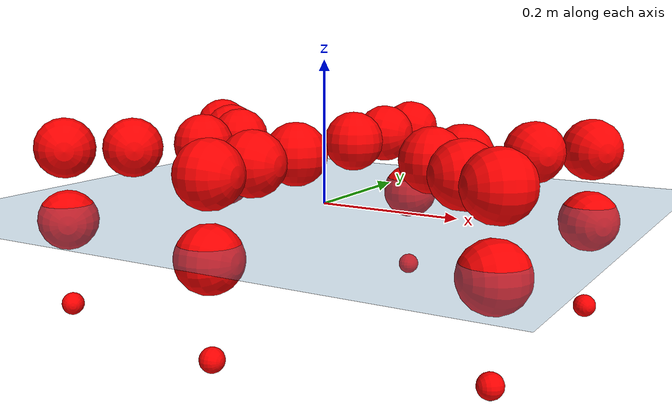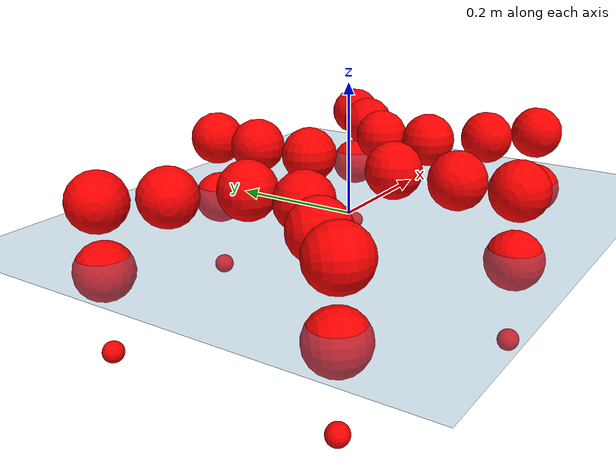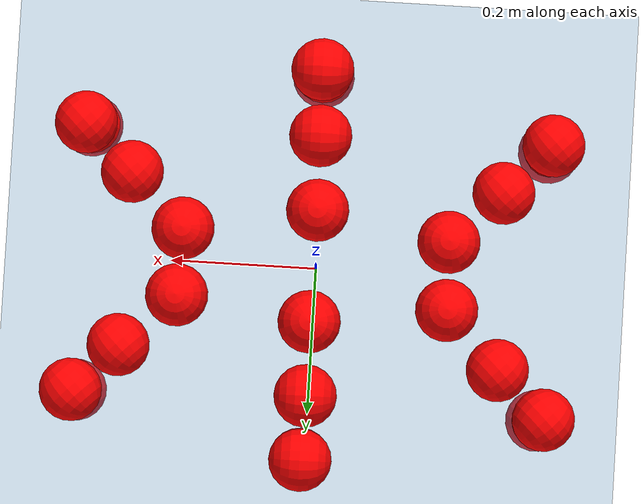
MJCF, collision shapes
<mujoco model="Golem">
  <compiler angle="radian" assetdir="assets" balanceinertia="true" inertiafromgeom="false"/>

  <option timestep="0.005" density="1.2" viscosity="2e-05"/>

  <size nkey="1"/>

  <visual>
    <quality shadowsize="8192"/>
    <map shadowclip="0.5"/>
  </visual>

  <default>
    <default class="/">
      <joint armature="0.01" damping="0.01" frictionloss="0.01"/>
      <geom contype="0" conaffinity="0" group="1" solref="-1000 -80"/>
      <site size="0.01 0.005 0.005" group="5"/>
      <general forcelimited="true" biastype="affine" gainprm="25" biasprm="0 -25 -0.5"/>
      <default class="visual">
        <geom type="mesh" group="2"/>
      </default>
      <default class="collision">
        <geom group="3"/>
      </default>
      <default class="foot">
        <geom size="0.01 0 0" condim="6" group="4" priority="1" solimp="0.015 1 0.01"/>
      </default>
      <default class="reward_collision_sphere">
        <geom group="5" rgba="1 0 0 1"/>
      </default>
    </default>
  </default>

  <asset>
    <texture type="skybox" colorspace="auto" name="//unnamed_texture_0" builtin="gradient" rgb1="0.95 0.95 0.95" rgb2="0.95 0.95 0.95" width="100" height="600"/>
    <texture type="2d" colorspace="auto" name="texplane" builtin="checker" rgb1="0.345 0.575 0.748" rgb2="0.345 0.575 0.748" markrgb="1 1 1" width="512" height="512"/>
    <material name="MatPlane" class="/" texture="texplane" texuniform="true" texrepeat="2 2" specular="0.9"/>
    <mesh name="body" class="/" file="body.stl" scale="0.001 0.001 0.001"/>
    <mesh name="coxa" class="/" file="coxa.stl" scale="0.001 0.001 0.001"/>
    <mesh name="femur" class="/" file="femur.stl" scale="0.001 0.001 0.001"/>
    <mesh name="tibia" class="/" file="tibia.stl" scale="0.001 0.001 0.001"/>
    <mesh name="tarsus" class="/" file="tarsus.stl" scale="0.001 0.001 0.001"/>
  </asset>

  <worldbody>
    <geom name="floor" class="/" size="100 100 0.125" type="plane" group="0" material="MatPlane"/>
    <light name="toplight_shadow" class="/" pos="0 0 5" dir="0.0990148 0.0990148 -0.990148" type="directional" ambient="0.04 0.04 0.04" diffuse="0.55 0.55 0.55" specular="0.12 0.12 0.12"/>
    <light name="toplight_fill" class="/" pos="0 0 5" dir="0.0990148 0.0990148 -0.990148" type="directional" castshadow="false" ambient="0.04 0.04 0.04" diffuse="0.3 0.3 0.3" specular="0.08 0.08 0.08"/>
    <body name="trunk" pos="0.00267227 0.0010951 0.00070998" quat="1 1.87938e-05 3.24129e-05 -1.56318e-06">
      <inertial pos="-0.000596222 -0.00106118 -0.00152456" quat="0.999997 0.00241031 0.000463772 -0.000865386" mass="4.39011" diaginertia="0.0191346 0.00389883 0.0261709"/>
      <joint name="//unnamed_joint_0" type="free"/>
      <geom name="//unnamed_geom_1" class="/" pos="0 0 0.0776169" quat="1 0 0 0" type="mesh" rgba="0.9 0.9 0.9 1" mesh="body"/>
      <site name="imu" class="/" pos="0.162229 0.0126535 0.116632" size="0.0106434"/>
      <camera name="track" class="/" pos="0 -1.66476 0" quat="0.707107 0.707107 0 0" mode="trackcom"/>
      <camera name="ego_camera" class="/" pos="0.149223 0 0.121276" quat="-0.5 -0.5 0.5 0.5"/>
      <body name="coxa_RR" pos="-0.204524 -0.0688457 0.076882" quat="0.382601 -5.11056e-06 0.000228834 -0.923914">
        <inertial pos="0.000101369 -0.00262988 0.000599914" quat="0.999959 -0.00860702 0.00232159 -0.00155174" mass="0.230229" diaginertia="0.0192648 0.00385761 0.0252485"/>
        <joint name="coxa_joint_RR" class="/" pos="0 0 0" axis="0.00331713 -0.00205866 -0.999992" range="-3.1374 3.13269" armature="0.00947705" damping="0" frictionloss="0.0106226"/>
        <geom name="//unnamed_geom_2" class="/" type="mesh" rgba="0.2 0.2 0.2 1" mesh="coxa"/>
        <geom name="//unnamed_geom_3" class="reward_collision_sphere" size="0.0425735" pos="-0.0344362 0 0"/>
        <body name="femur_RR" pos="0.0655365 0.000130082 -0.00246828" quat="0.500076 -0.499917 0.500095 0.499911">
          <inertial pos="-0.000318281 0.000329381 -0.00036558" quat="0.99999 0.00410126 0.000511868 0.0014905" mass="0.240748" diaginertia="0.0198435 0.00393723 0.0270127"/>
          <joint name="femur_joint_RR" class="/" pos="0 0 0" axis="-0.000370403 0.00585584 -0.999983" range="-3.18971 3.10393" armature="0.011196" damping="0.00647883" frictionloss="0.0119056"/>
          <geom name="//unnamed_geom_4" class="/" type="mesh" rgba="0.9 0.9 0.9 1" mesh="femur"/>
          <geom name="//unnamed_geom_5" class="reward_collision_sphere" size="0.0425735"/>
          <body name="tibia_RR" pos="-0.00302273 -0.0930077 0.00306063" quat="-0.00103578 0.999999 0.000637529 0.000288714">
            <inertial pos="-0.00249373 0.00110836 -0.000617741" quat="0.999997 -0.00235202 0.000198532 -0.000405826" mass="0.244085" diaginertia="0.0196595 0.00398787 0.025431"/>
            <joint name="tibia_joint_RR" class="/" pos="0 0 0" axis="-0.00151407 0.0107626 0.999941" range="-3.13877 3.16359" armature="0.0110625" damping="0.000929864" frictionloss="0.0106578"/>
            <geom name="//unnamed_geom_6" class="/" type="mesh" rgba="0.2 0.2 0.2 1" mesh="tibia"/>
            <geom name="//unnamed_geom_7" class="reward_collision_sphere" size="0.0425735"/>
            <body name="tarsus_RR" pos="0.102326 0.000422469 0.00196717" quat="1 1.43815e-05 -0.000102428 0.000123745">
              <inertial pos="0.072264 0.000395658 0.000205108" quat="0.503897 0.497475 0.500908 0.497693" mass="0.240403" diaginertia="0.019726 0.00401437 0.0262719"/>
              <joint name="tarsus_joint_RR" class="/" pos="0 0 0" axis="-0.000396229 -0.000150839 1" range="-3.18825 3.16776" armature="0.0111725" damping="0.0426238" frictionloss="0.0104808"/>
              <geom name="//unnamed_geom_8" class="/" type="mesh" rgba="0.9 0.9 0.9 1" mesh="tarsus"/>
              <geom name="foot_1" class="foot" size="0.0106081" pos="0.128562 0 0" quat="0 -0.707107 0 0.707107"/>
              <geom name="//unnamed_geom_10" class="reward_collision_sphere" size="0.0425735"/>
              <geom name="//unnamed_geom_11" class="reward_collision_sphere" size="0.0159651" pos="0.123396 0 0"/>
              <site name="foot_1" class="foot" pos="0.128562 0 0" quat="0 -0.707107 0 0.707107" size="0.0106434"/>
            </body>
          </body>
        </body>
      </body>
      <body name="coxa_RM" pos="-0.000730699 -0.111514 0.0788566" quat="0.706623 8.85983e-05 0.000132556 -0.70759">
        <inertial pos="0.00205614 -0.000134009 0.000387579" quat="1 0.000132263 -0.000534775 3.41437e-05" mass="0.240763" diaginertia="0.0197315 0.00385465 0.0267068"/>
        <joint name="coxa_joint_RM" class="/" pos="0 0 0" axis="0.00160377 -0.00155839 -0.999997" stiffness="0.000954068" range="-3.12983 3.12266" armature="0.0107993" damping="0.00155999" frictionloss="0.00927541"/>
        <geom name="//unnamed_geom_12" class="/" type="mesh" rgba="0.2 0.2 0.2 1" mesh="coxa"/>
        <geom name="//unnamed_geom_13" class="reward_collision_sphere" size="0.0425735" pos="-0.0344362 0 0"/>
        <body name="femur_RM" pos="0.0662931 0.00195736 0.000889319" quat="0.499685 -0.500293 0.499129 0.500892">
          <inertial pos="-0.00105995 -1.10218e-05 -0.000165487" quat="0.999995 0.00229691 0.000229366 0.00206332" mass="0.247448" diaginertia="0.0205866 0.00401066 0.0270394"/>
          <joint name="femur_joint_RM" class="/" pos="0 0 0" axis="-0.00391746 0.00306524 -0.999988" stiffness="0.000113426" range="-3.13752 3.13912" armature="0.0104972" damping="0.0194775" frictionloss="0.0106702"/>
          <geom name="//unnamed_geom_14" class="/" type="mesh" rgba="0.9 0.9 0.9 1" mesh="femur"/>
          <geom name="//unnamed_geom_15" class="reward_collision_sphere" size="0.0425735"/>
          <body name="tibia_RM" pos="6.79886e-05 -0.0898719 0.00236019" quat="-0.000120991 1 0.000132335 0.000157725">
            <inertial pos="0.00171984 -0.00284878 0.000599146" quat="0.999918 0.00639178 0.00145123 0.0110095" mass="0.235112" diaginertia="0.0200162 0.00415596 0.0266598"/>
            <joint name="tibia_joint_RM" class="/" pos="0 0 0" axis="-0.000971888 -0.00209412 0.999997" range="-3.19119 3.19059" armature="0.0105356" damping="0.0164638" frictionloss="0.0100759"/>
            <geom name="//unnamed_geom_16" class="/" type="mesh" rgba="0.2 0.2 0.2 1" mesh="tibia"/>
            <geom name="//unnamed_geom_17" class="reward_collision_sphere" size="0.0425735"/>
            <body name="tarsus_RM" pos="0.100225 0.000427421 0.00193437" quat="1 7.05682e-05 -0.000141146 2.69013e-05">
              <inertial pos="0.0678292 -0.00107205 0.0022986" quat="0.509725 0.500196 0.490854 0.499046" mass="0.248969" diaginertia="0.0192808 0.00393542 0.0254958"/>
              <joint name="tarsus_joint_RM" class="/" pos="0 0 0" axis="0.00260599 -0.000602632 0.999996" range="-3.11173 3.15788" armature="0.010624" damping="0.00416337" frictionloss="0.0107202"/>
              <geom name="//unnamed_geom_18" class="/" type="mesh" rgba="0.9 0.9 0.9 1" mesh="tarsus"/>
              <geom name="foot_2" class="foot" size="0.0102845" pos="0.128562 0 0" quat="0 -0.707107 0 0.707107"/>
              <geom name="//unnamed_geom_20" class="reward_collision_sphere" size="0.0425735"/>
              <geom name="//unnamed_geom_21" class="reward_collision_sphere" size="0.0159651" pos="0.123396 0 0"/>
              <site name="foot_2" class="foot" pos="0.128562 0 0" quat="0 -0.707107 0 0.707107" size="0.0106434"/>
            </body>
          </body>
        </body>
      </body>
      <body name="coxa_RF" pos="0.203566 -0.0665897 0.0804511" quat="0.923925 0.000118524 5.65618e-05 -0.382574">
        <inertial pos="0.000974336 0.000847099 0.000826755" quat="1 0.000365815 -0.000631059 7.37857e-06" mass="0.23943" diaginertia="0.0198704 0.00393566 0.0260757"/>
        <joint name="coxa_joint_RF" class="/" pos="0 0 0" axis="0.00183014 -0.00147392 -0.999997" stiffness="0.00109786" range="-3.12725 3.11728" armature="0.0119318" damping="0.00303941" frictionloss="0.0108397"/>
        <geom name="//unnamed_geom_22" class="/" type="mesh" rgba="0.2 0.2 0.2 1" mesh="coxa"/>
        <geom name="//unnamed_geom_23" class="reward_collision_sphere" size="0.0425735" pos="-0.0344362 0 0"/>
        <body name="femur_RF" pos="0.068533 0.000373433 -0.00182389" quat="0.500204 -0.499875 0.499976 0.499945">
          <inertial pos="-7.31681e-05 -0.00161169 0.000710253" quat="1 -3.3141e-05 0.000299105 0.000355076" mass="0.240899" diaginertia="0.0199269 0.00392245 0.0270138"/>
          <joint name="femur_joint_RF" class="/" pos="0 0 0" axis="0.000623676 -0.000752464 -1" stiffness="0.00362743" range="-3.19324 3.12108" armature="0.00922002" damping="0.00925142" frictionloss="0.0117845"/>
          <geom name="//unnamed_geom_24" class="/" type="mesh" rgba="0.9 0.9 0.9 1" mesh="femur"/>
          <geom name="//unnamed_geom_25" class="reward_collision_sphere" size="0.0425735"/>
          <body name="tibia_RF" pos="-0.00274745 -0.0912487 0.00207066" quat="-0.000305123 1 0.000133929 -0.000182891">
            <inertial pos="-0.00247999 -0.000365229 0.00106408" quat="1 -0.000481614 -0.000522472 0.000232325" mass="0.245805" diaginertia="0.0193963 0.0040084 0.0260319"/>
            <joint name="tibia_joint_RF" class="/" pos="0 0 0" axis="0.00527485 -0.0107994 0.999928" range="-3.11838 3.08477" armature="0.010899" damping="0.0130366" frictionloss="0.010621"/>
            <geom name="//unnamed_geom_26" class="/" type="mesh" rgba="0.2 0.2 0.2 1" mesh="tibia"/>
            <geom name="//unnamed_geom_27" class="reward_collision_sphere" size="0.0425735"/>
            <body name="tarsus_RF" pos="0.0986371 0.00227672 0.00302702" quat="0.999999 0.00115716 1.83323e-05 0.000732431">
              <inertial pos="0.068702 -0.000952061 0.000107045" quat="0.499928 0.50229 0.498823 0.498951" mass="0.241652" diaginertia="0.0197519 0.00405718 0.0266387"/>
              <joint name="tarsus_joint_RF" class="/" pos="0 0 0" axis="0.00247921 0.00915834 0.999955" range="-3.13302 3.15936" armature="0.0112504" damping="0.00763053" frictionloss="0.0103795"/>
              <geom name="//unnamed_geom_28" class="/" type="mesh" rgba="0.9 0.9 0.9 1" mesh="tarsus"/>
              <geom name="foot_3" class="foot" size="0.0113576" pos="0.128562 0 0" quat="0 -0.707107 0 0.707107"/>
              <geom name="//unnamed_geom_30" class="reward_collision_sphere" size="0.0425735"/>
              <geom name="//unnamed_geom_31" class="reward_collision_sphere" size="0.0159651" pos="0.123396 0 0"/>
              <site name="foot_3" class="foot" pos="0.128562 0 0" quat="0 -0.707107 0 0.707107" size="0.0106434"/>
            </body>
          </body>
        </body>
      </body>
      <body name="coxa_LR" pos="-0.206721 0.0720308 0.0769962" quat="0.382683 5.50528e-08 4.34777e-08 0.92388">
        <inertial pos="-0.00248079 0.000108698 -0.0019005" quat="0.99991 -0.00646537 0.00244761 0.0114545" mass="0.241719" diaginertia="0.0205272 0.00422261 0.0265835"/>
        <joint name="coxa_joint_LR" class="/" pos="0 0 0" axis="-0.0014118 0.0164414 -0.999864" stiffness="0.00322518" range="-3.1191 3.12672" armature="0.0100848" damping="0.0154408" frictionloss="0.00944558"/>
        <geom name="//unnamed_geom_32" class="/" type="mesh" rgba="0.2 0.2 0.2 1" mesh="coxa"/>
        <geom name="//unnamed_geom_33" class="reward_collision_sphere" size="0.0425735" pos="-0.0344362 0 0"/>
        <body name="femur_LR" pos="0.07137 -0.00255361 -0.00285119" quat="0.500002 -0.499998 0.499999 0.5">
          <inertial pos="0.000253353 -0.000106215 -0.000348785" quat="0.999991 0.00173498 0.0034183 0.00154004" mass="0.241445" diaginertia="0.019981 0.0041295 0.0262745"/>
          <joint name="femur_joint_LR" class="/" pos="0 0 0" axis="0.00297525 -0.00637889 0.999975" range="-3.15832 3.13172" armature="0.0100681" damping="0.0062858" frictionloss="0.00923025"/>
          <geom name="//unnamed_geom_34" class="/" type="mesh" rgba="0.9 0.9 0.9 1" mesh="femur"/>
          <geom name="//unnamed_geom_35" class="reward_collision_sphere" size="0.0425735"/>
          <body name="tibia_LR" pos="-0.000979599 -0.0909963 0.00163836" quat="-0.000383934 0.999999 -0.00103768 -0.000795368">
            <inertial pos="0.000244703 0.000729794 3.42536e-05" quat="0.999992 -0.00319653 0.000320043 -0.00225904" mass="0.240117" diaginertia="0.0201642 0.00406572 0.0264766"/>
            <joint name="tibia_joint_LR" class="/" pos="0 0 0" axis="-0.00128451 0.000686051 -0.999999" range="-3.15136 3.09473" armature="0.010541" damping="0.0101299" frictionloss="0.0107919"/>
            <geom name="//unnamed_geom_36" class="/" type="mesh" rgba="0.2 0.2 0.2 1" mesh="tibia"/>
            <geom name="//unnamed_geom_37" class="reward_collision_sphere" size="0.0425735"/>
            <body name="tarsus_LR" pos="0.0997936 0.000139892 0.00270206" quat="0.999999 -0.000456517 0.00129847 0.000278694">
              <inertial pos="0.0724909 0.000138279 -0.00251753" quat="0.499045 0.501276 0.500065 0.499612" mass="0.234508" diaginertia="0.0196437 0.00386098 0.0258781"/>
              <joint name="tarsus_joint_LR" class="/" pos="0 0 0" axis="-0.00744543 0.00484658 -0.999961" stiffness="0.00155" range="-3.18786 3.09086" armature="0.0106308" damping="0" frictionloss="0.0103108"/>
              <geom name="//unnamed_geom_38" class="/" type="mesh" rgba="0.9 0.9 0.9 1" mesh="tarsus"/>
              <geom name="foot_4" class="foot" size="0.0111187" pos="0.128562 0 0" quat="0.707107 0 -0.707107 0"/>
              <geom name="//unnamed_geom_40" class="reward_collision_sphere" size="0.0425735"/>
              <geom name="//unnamed_geom_41" class="reward_collision_sphere" size="0.0159651" pos="0.123396 0 0"/>
              <site name="foot_4" class="foot" pos="0.128562 0 0" quat="0.707107 0 -0.707107 0" size="0.0106434"/>
            </body>
          </body>
        </body>
      </body>
      <body name="coxa_LM" pos="0.00187564 0.108235 0.0794619" quat="0.707226 0.000318482 0.000100484 0.706987">
        <inertial pos="-0.00076182 0.000530988 0.000432338" quat="0.999974 -0.00324909 -0.00424427 0.00480782" mass="0.242857" diaginertia="0.0198847 0.00400419 0.0263553"/>
        <joint name="coxa_joint_LM" class="/" pos="0 0 0" axis="-0.00375587 -0.000881659 -0.999993" range="-3.09142 3.14606" armature="0.0107564" damping="0.0106773" frictionloss="0.0118281"/>
        <geom name="//unnamed_geom_42" class="/" type="mesh" rgba="0.2 0.2 0.2 1" mesh="coxa"/>
        <geom name="//unnamed_geom_43" class="reward_collision_sphere" size="0.0425735" pos="-0.0344362 0 0"/>
        <body name="femur_LM" pos="0.0655806 0.000617819 0.00112742" quat="0.499525 -0.500003 0.499911 0.50056">
          <inertial pos="0.000223298 -0.00262823 0.00264111" quat="0.999911 -0.00561011 0.00270993 -0.0118066" mass="0.238003" diaginertia="0.0198243 0.0038178 0.0257527"/>
          <joint name="femur_joint_LM" class="/" pos="0 0 0" axis="0.00564109 -0.00820873 0.99995" range="-3.13485 3.09397" armature="0.0111268" damping="0.00437739" frictionloss="0.0104824"/>
          <geom name="//unnamed_geom_44" class="/" type="mesh" rgba="0.9 0.9 0.9 1" mesh="femur"/>
          <geom name="//unnamed_geom_45" class="reward_collision_sphere" size="0.0425735"/>
          <body name="tibia_LM" pos="5.07924e-05 -0.0864988 -0.00204919" quat="0.000770925 0.999999 -0.000392727 0.00111263">
            <inertial pos="-0.000921188 -0.00342205 -0.000730407" quat="0.999971 0.00205393 0.00732176 0.000225623" mass="0.242503" diaginertia="0.0197285 0.00412005 0.0259677"/>
            <joint name="tibia_joint_LM" class="/" pos="0 0 0" axis="-0.00503679 -0.00342946 -0.999981" stiffness="0.000233817" range="-3.1437 3.12198" armature="0.0119006" damping="0" frictionloss="0.0102797"/>
            <geom name="//unnamed_geom_46" class="/" type="mesh" rgba="0.2 0.2 0.2 1" mesh="tibia"/>
            <geom name="//unnamed_geom_47" class="reward_collision_sphere" size="0.0425735"/>
            <body name="tarsus_LM" pos="0.103875 0.000862232 0.000898163" quat="0.999999 -9.89259e-05 0.000699482 -0.00109198">
              <inertial pos="0.0673138 -3.38367e-05 -0.000601318" quat="0.500025 0.499982 0.499905 0.500089" mass="0.237946" diaginertia="0.0193479 0.00391418 0.0259919"/>
              <joint name="tarsus_joint_LM" class="/" pos="0 0 0" axis="0.000998009 0.00012691 -0.999999" range="-3.08613 3.11791" armature="0.0120032" damping="1.43895e-05" frictionloss="0.0104928"/>
              <geom name="//unnamed_geom_48" class="/" type="mesh" rgba="0.9 0.9 0.9 1" mesh="tarsus"/>
              <geom name="foot_5" class="foot" size="0.0105918" pos="0.128562 0 0" quat="0.707107 0 -0.707107 0"/>
              <geom name="//unnamed_geom_50" class="reward_collision_sphere" size="0.0425735"/>
              <geom name="//unnamed_geom_51" class="reward_collision_sphere" size="0.0159651" pos="0.123396 0 0"/>
              <site name="foot_5" class="foot" pos="0.128562 0 0" quat="0.707107 0 -0.707107 0" size="0.0106434"/>
            </body>
          </body>
        </body>
      </body>
      <body name="coxa_LF" pos="0.206954 0.0724891 0.0749433" quat="0.923874 -9.2462e-05 9.67041e-05 0.382696">
        <inertial pos="-0.000178034 0.000416622 0.000517969" quat="0.999963 -0.00563751 -0.0060645 -0.00226383" mass="0.230239" diaginertia="0.0193703 0.00385455 0.0255427"/>
        <joint name="coxa_joint_LF" class="/" pos="0 0 0" axis="-0.00273147 0.00295608 -0.999992" range="-3.14096 3.19087" armature="0.0118972" damping="0.00380308" frictionloss="0.0097919"/>
        <geom name="//unnamed_geom_52" class="/" type="mesh" rgba="0.2 0.2 0.2 1" mesh="coxa"/>
        <geom name="//unnamed_geom_53" class="reward_collision_sphere" size="0.0425735" pos="-0.0344362 0 0"/>
        <body name="femur_LF" pos="0.069035 -0.00213412 0.00101234" quat="0.500135 -0.500397 0.498909 0.500557">
          <inertial pos="0.00262301 8.77832e-05 0.000414744" quat="0.999987 0.00375443 0.0031739 0.00146886" mass="0.246861" diaginertia="0.020225 0.00404012 0.0260857"/>
          <joint name="femur_joint_LF" class="/" pos="0 0 0" axis="3.55306e-05 -6.63568e-05 1" range="-3.11337 3.11921" armature="0.0119941" damping="0.0165196" frictionloss="0.0112049"/>
          <geom name="//unnamed_geom_54" class="/" type="mesh" rgba="0.9 0.9 0.9 1" mesh="femur"/>
          <geom name="//unnamed_geom_55" class="reward_collision_sphere" size="0.0425735"/>
          <body name="tibia_LF" pos="-0.000415992 -0.0879291 0.00233197" quat="1.71271e-05 1 -8.34513e-05 0.00013026">
            <inertial pos="9.31581e-05 0.00219487 -3.93099e-05" quat="0.999988 0.00192663 -0.00375319 0.00245501" mass="0.239947" diaginertia="0.020118 0.00399727 0.0262032"/>
            <joint name="tibia_joint_LF" class="/" pos="0 0 0" axis="-0.00414198 0.00137359 -0.99999" range="-3.13677 3.14322" armature="0.0099011" damping="0" frictionloss="0.0109077"/>
            <geom name="//unnamed_geom_56" class="/" type="mesh" rgba="0.2 0.2 0.2 1" mesh="tibia"/>
            <geom name="//unnamed_geom_57" class="reward_collision_sphere" size="0.0425735"/>
            <body name="tarsus_LF" pos="0.101283 0.000962302 0.000221706" quat="0.999999 0.000175693 -0.000548024 0.00120853">
              <inertial pos="0.0711499 0.000732235 -0.000288216" quat="0.50037 0.507509 0.496703 0.495328" mass="0.240308" diaginertia="0.0197525 0.00405727 0.0260556"/>
              <joint name="tarsus_joint_LF" class="/" pos="0 0 0" axis="-0.000158135 -0.00102 -0.999999" stiffness="0.0276417" range="-3.18077 3.14394" armature="0.0105448" damping="0.0299113" frictionloss="0.0104879"/>
              <geom name="//unnamed_geom_58" class="/" type="mesh" rgba="0.9 0.9 0.9 1" mesh="tarsus"/>
              <geom name="foot_6" class="foot" size="0.010615" pos="0.128562 0 0" quat="0.707107 0 -0.707107 0"/>
              <geom name="//unnamed_geom_60" class="reward_collision_sphere" size="0.0425735"/>
              <geom name="//unnamed_geom_61" class="reward_collision_sphere" size="0.0159651" pos="0.123396 0 0"/>
              <site name="foot_6" class="foot" pos="0.128562 0 0" quat="0.707107 0 -0.707107 0" size="0.0106434"/>
            </body>
          </body>
        </body>
      </body>
    </body>
  </worldbody>

  <contact>
    <pair class="/" geom1="floor" geom2="foot_1" name="//unnamed_contact_0"/>
    <pair class="/" geom1="floor" geom2="foot_2" name="//unnamed_contact_1"/>
    <pair class="/" geom1="floor" geom2="foot_3" name="//unnamed_contact_2"/>
    <pair class="/" geom1="floor" geom2="foot_4" name="//unnamed_contact_3"/>
    <pair class="/" geom1="floor" geom2="foot_5" name="//unnamed_contact_4"/>
    <pair class="/" geom1="floor" geom2="foot_6" name="//unnamed_contact_5"/>
  </contact>

  <actuator>
    <general name="coxa_joint_RR" class="/" joint="coxa_joint_RR" forcerange="-7.73391 7.73391" gainprm="25.4297" biasprm="0 -25.4297 -0.578873"/>
    <general name="femur_joint_RR" class="/" joint="femur_joint_RR" forcerange="-7.70557 7.70557" gainprm="25.4297" biasprm="0 -25.4297 -0.578873"/>
    <general name="tibia_joint_RR" class="/" joint="tibia_joint_RR" forcerange="-7.68237 7.68237" gainprm="25.4297" biasprm="0 -25.4297 -0.578873"/>
    <general name="tarsus_joint_RR" class="/" joint="tarsus_joint_RR" forcerange="-8.37409 8.37409" gainprm="25.4297" biasprm="0 -25.4297 -0.578873"/>
    <general name="coxa_joint_RM" class="/" joint="coxa_joint_RM" forcerange="-6.98963 6.98963" gainprm="25.4297" biasprm="0 -25.4297 -0.578873"/>
    <general name="femur_joint_RM" class="/" joint="femur_joint_RM" forcerange="-8.06528 8.06528" gainprm="25.4297" biasprm="0 -25.4297 -0.578873"/>
    <general name="tibia_joint_RM" class="/" joint="tibia_joint_RM" forcerange="-7.40245 7.40245" gainprm="25.4297" biasprm="0 -25.4297 -0.578873"/>
    <general name="tarsus_joint_RM" class="/" joint="tarsus_joint_RM" forcerange="-7.7725 7.7725" gainprm="25.4297" biasprm="0 -25.4297 -0.578873"/>
    <general name="coxa_joint_RF" class="/" joint="coxa_joint_RF" forcerange="-6.99622 6.99622" gainprm="25.4297" biasprm="0 -25.4297 -0.578873"/>
    <general name="femur_joint_RF" class="/" joint="femur_joint_RF" forcerange="-7.53623 7.53623" gainprm="25.4297" biasprm="0 -25.4297 -0.578873"/>
    <general name="tibia_joint_RF" class="/" joint="tibia_joint_RF" forcerange="-6.99829 6.99829" gainprm="25.4297" biasprm="0 -25.4297 -0.578873"/>
    <general name="tarsus_joint_RF" class="/" joint="tarsus_joint_RF" forcerange="-7.93848 7.93848" gainprm="25.4297" biasprm="0 -25.4297 -0.578873"/>
    <general name="coxa_joint_LR" class="/" joint="coxa_joint_LR" forcerange="-7.80332 7.80332" gainprm="25.4297" biasprm="0 -25.4297 -0.578873"/>
    <general name="femur_joint_LR" class="/" joint="femur_joint_LR" forcerange="-7.93174 7.93174" gainprm="25.4297" biasprm="0 -25.4297 -0.578873"/>
    <general name="tibia_joint_LR" class="/" joint="tibia_joint_LR" forcerange="-7.61015 7.61015" gainprm="25.4297" biasprm="0 -25.4297 -0.578873"/>
    <general name="tarsus_joint_LR" class="/" joint="tarsus_joint_LR" forcerange="-7.5979 7.5979" gainprm="25.4297" biasprm="0 -25.4297 -0.578873"/>
    <general name="coxa_joint_LM" class="/" joint="coxa_joint_LM" forcerange="-8.45442 8.45442" gainprm="25.4297" biasprm="0 -25.4297 -0.578873"/>
    <general name="femur_joint_LM" class="/" joint="femur_joint_LM" forcerange="-7.79722 7.79722" gainprm="25.4297" biasprm="0 -25.4297 -0.578873"/>
    <general name="tibia_joint_LM" class="/" joint="tibia_joint_LM" forcerange="-7.73944 7.73944" gainprm="25.4297" biasprm="0 -25.4297 -0.578873"/>
    <general name="tarsus_joint_LM" class="/" joint="tarsus_joint_LM" forcerange="-7.93068 7.93068" gainprm="25.4297" biasprm="0 -25.4297 -0.578873"/>
    <general name="coxa_joint_LF" class="/" joint="coxa_joint_LF" forcerange="-7.00558 7.00558" gainprm="25.4297" biasprm="0 -25.4297 -0.578873"/>
    <general name="femur_joint_LF" class="/" joint="femur_joint_LF" forcerange="-7.85833 7.85833" gainprm="25.4297" biasprm="0 -25.4297 -0.578873"/>
    <general name="tibia_joint_LF" class="/" joint="tibia_joint_LF" forcerange="-7.46026 7.46026" gainprm="25.4297" biasprm="0 -25.4297 -0.578873"/>
    <general name="tarsus_joint_LF" class="/" joint="tarsus_joint_LF" forcerange="-7.52266 7.52266" gainprm="25.4297" biasprm="0 -25.4297 -0.578873"/>
  </actuator>

  <sensor>
    <gyro site="imu" name="imu_angular_velocity"/>
    <velocimeter site="imu" name="imu_linear_velocity"/>
    <framelinvel objtype="site" objname="foot_1" name="foot_1_global_linear_velocity"/>
    <framelinvel objtype="site" objname="foot_2" name="foot_2_global_linear_velocity"/>
    <framelinvel objtype="site" objname="foot_3" name="foot_3_global_linear_velocity"/>
    <framelinvel objtype="site" objname="foot_4" name="foot_4_global_linear_velocity"/>
    <framelinvel objtype="site" objname="foot_5" name="foot_5_global_linear_velocity"/>
    <framelinvel objtype="site" objname="foot_6" name="foot_6_global_linear_velocity"/>
  </sensor>

  <keyframe>
    <key name="home" qpos="0 0 0.1457 1 0 0 0 0 0 0 0 0 0 0 0 0 0 0 0 0 0 0 0 0 0 0 0 0 0 0 0"/>
  </keyframe>
</mujoco>
